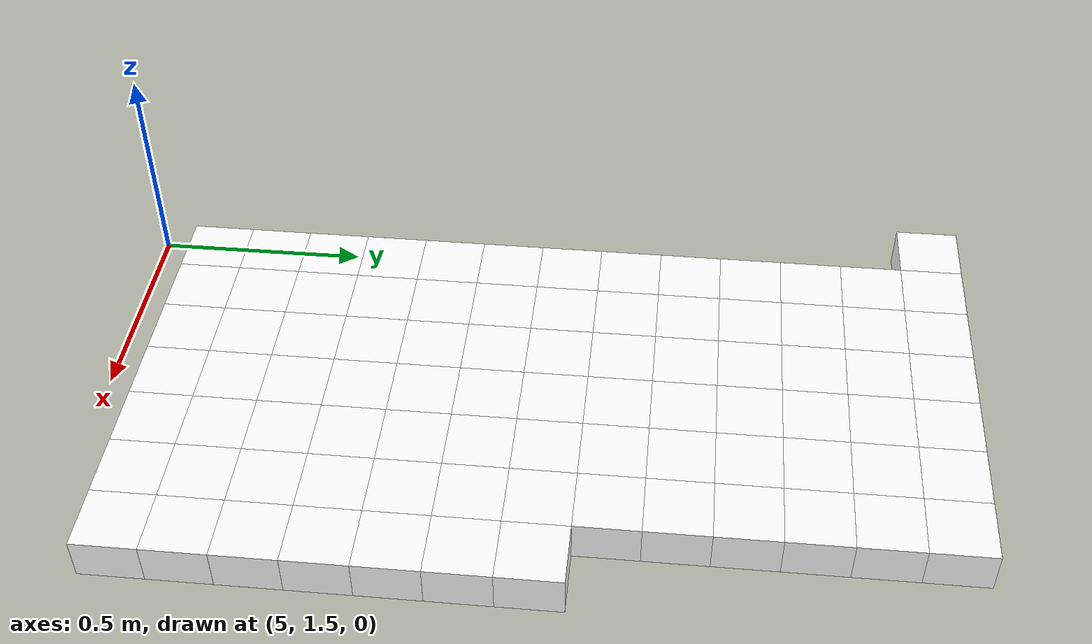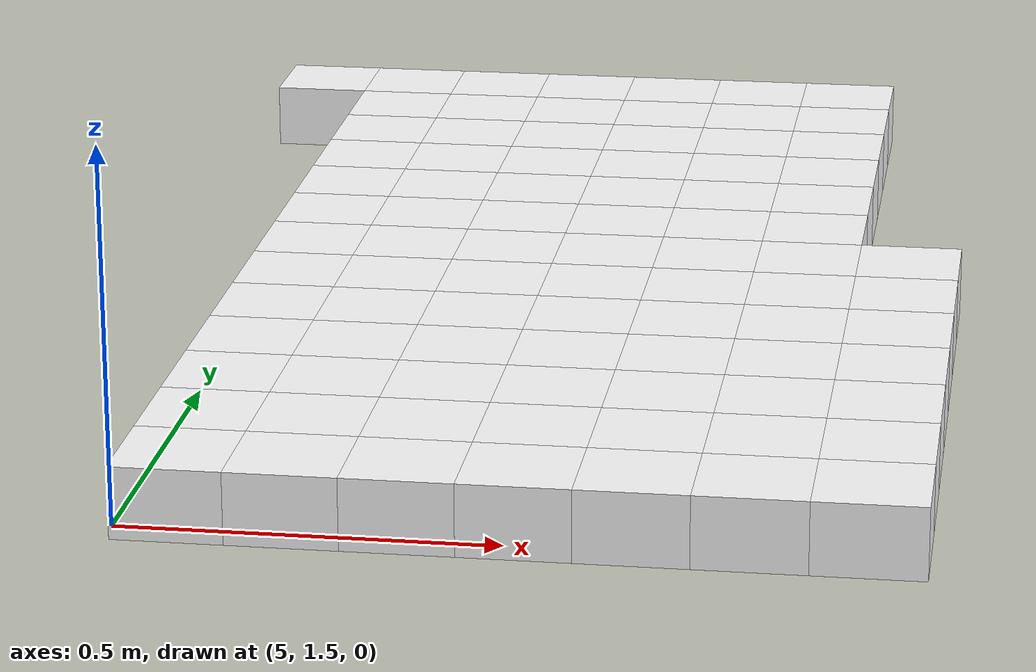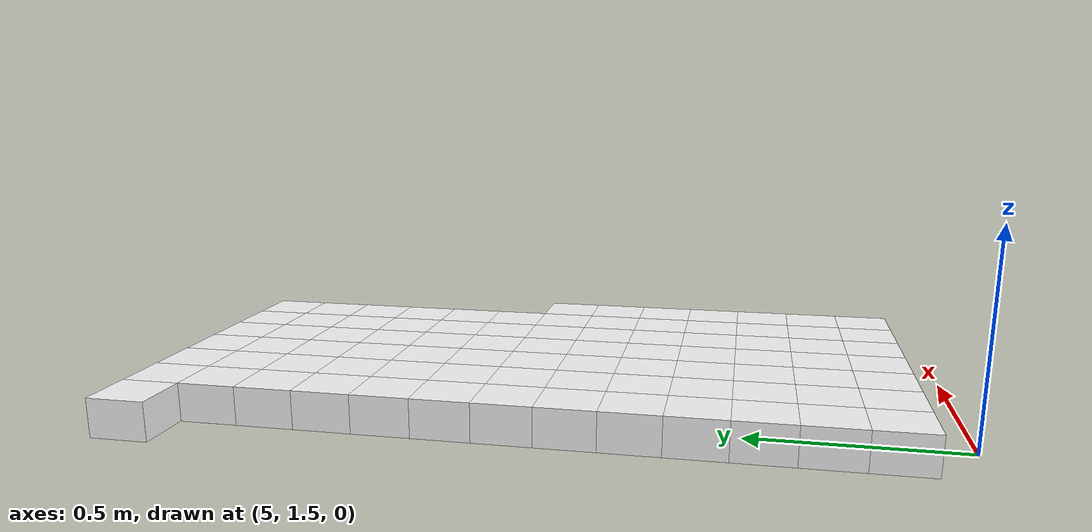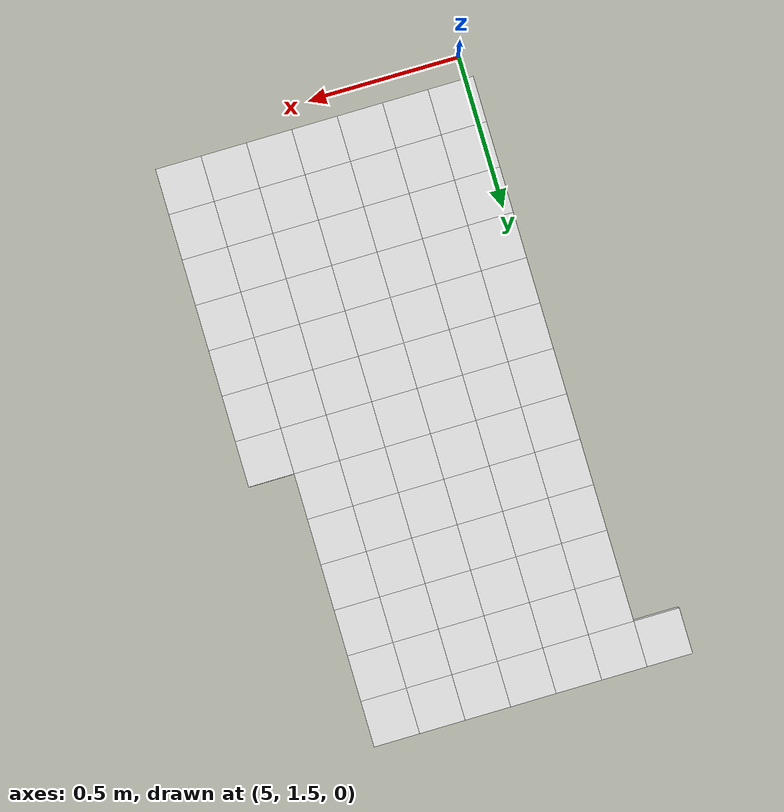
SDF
<sdf version="1.7">
 <world name="default">
  <include><uri>model://sun</uri></include>
  <model name="static_environment">
   <static>true</static>
   <link name="region_711">
    <pose>5.0500000000000025 1.65 0.0 0.0 0.0 0.0</pose>
    <collision name="region_711_collision">
     <geometry><box><size>0.15 0.15 0.1</size></box></geometry>
     <surface><friction><ode><mu>1.0</mu><mu2>1.0</mu2></ode></friction></surface>
    </collision>
    <visual name="region_711_visual">
     <geometry><box><size>0.15 0.15 0.1</size></box></geometry>
     <material><ambient>1.0 1.0 1.0 1.0</ambient><diffuse>1.0 1.0 1.0 1.0</diffuse></material>
    </visual>
   </link>
   <link name="region_712">
    <pose>5.200000000000003 1.65 0.0 0.0 0.0 0.0</pose>
    <collision name="region_712_collision">
     <geometry><box><size>0.15 0.15 0.1</size></box></geometry>
     <surface><friction><ode><mu>1.0</mu><mu2>1.0</mu2></ode></friction></surface>
    </collision>
    <visual name="region_712_visual">
     <geometry><box><size>0.15 0.15 0.1</size></box></geometry>
     <material><ambient>1.0 1.0 1.0 1.0</ambient><diffuse>1.0 1.0 1.0 1.0</diffuse></material>
    </visual>
   </link>
   <link name="region_713">
    <pose>5.350000000000003 1.65 0.0 0.0 0.0 0.0</pose>
    <collision name="region_713_collision">
     <geometry><box><size>0.15 0.15 0.1</size></box></geometry>
     <surface><friction><ode><mu>1.0</mu><mu2>1.0</mu2></ode></friction></surface>
    </collision>
    <visual name="region_713_visual">
     <geometry><box><size>0.15 0.15 0.1</size></box></geometry>
     <material><ambient>1.0 1.0 1.0 1.0</ambient><diffuse>1.0 1.0 1.0 1.0</diffuse></material>
    </visual>
   </link>
   <link name="region_714">
    <pose>5.5000000000000036 1.65 0.0 0.0 0.0 0.0</pose>
    <collision name="region_714_collision">
     <geometry><box><size>0.15 0.15 0.1</size></box></geometry>
     <surface><friction><ode><mu>1.0</mu><mu2>1.0</mu2></ode></friction></surface>
    </collision>
    <visual name="region_714_visual">
     <geometry><box><size>0.15 0.15 0.1</size></box></geometry>
     <material><ambient>1.0 1.0 1.0 1.0</ambient><diffuse>1.0 1.0 1.0 1.0</diffuse></material>
    </visual>
   </link>
   <link name="region_715">
    <pose>5.650000000000004 1.65 0.0 0.0 0.0 0.0</pose>
    <collision name="region_715_collision">
     <geometry><box><size>0.15 0.15 0.1</size></box></geometry>
     <surface><friction><ode><mu>1.0</mu><mu2>1.0</mu2></ode></friction></surface>
    </collision>
    <visual name="region_715_visual">
     <geometry><box><size>0.15 0.15 0.1</size></box></geometry>
     <material><ambient>1.0 1.0 1.0 1.0</ambient><diffuse>1.0 1.0 1.0 1.0</diffuse></material>
    </visual>
   </link>
   <link name="region_716">
    <pose>5.800000000000004 1.65 0.0 0.0 0.0 0.0</pose>
    <collision name="region_716_collision">
     <geometry><box><size>0.15 0.15 0.1</size></box></geometry>
     <surface><friction><ode><mu>1.0</mu><mu2>1.0</mu2></ode></friction></surface>
    </collision>
    <visual name="region_716_visual">
     <geometry><box><size>0.15 0.15 0.1</size></box></geometry>
     <material><ambient>1.0 1.0 1.0 1.0</ambient><diffuse>1.0 1.0 1.0 1.0</diffuse></material>
    </visual>
   </link>
   <link name="region_717">
    <pose>5.950000000000005 1.65 0.0 0.0 0.0 0.0</pose>
    <collision name="region_717_collision">
     <geometry><box><size>0.15 0.15 0.1</size></box></geometry>
     <surface><friction><ode><mu>1.0</mu><mu2>1.0</mu2></ode></friction></surface>
    </collision>
    <visual name="region_717_visual">
     <geometry><box><size>0.15 0.15 0.1</size></box></geometry>
     <material><ambient>1.0 1.0 1.0 1.0</ambient><diffuse>1.0 1.0 1.0 1.0</diffuse></material>
    </visual>
   </link>
   <link name="region_731">
    <pose>5.0500000000000025 1.7999999999999998 0.0 0.0 0.0 0.0</pose>
    <collision name="region_731_collision">
     <geometry><box><size>0.15 0.15 0.1</size></box></geometry>
     <surface><friction><ode><mu>1.0</mu><mu2>1.0</mu2></ode></friction></surface>
    </collision>
    <visual name="region_731_visual">
     <geometry><box><size>0.15 0.15 0.1</size></box></geometry>
     <material><ambient>1.0 1.0 1.0 1.0</ambient><diffuse>1.0 1.0 1.0 1.0</diffuse></material>
    </visual>
   </link>
   <link name="region_732">
    <pose>5.200000000000003 1.7999999999999998 0.0 0.0 0.0 0.0</pose>
    <collision name="region_732_collision">
     <geometry><box><size>0.15 0.15 0.1</size></box></geometry>
     <surface><friction><ode><mu>1.0</mu><mu2>1.0</mu2></ode></friction></surface>
    </collision>
    <visual name="region_732_visual">
     <geometry><box><size>0.15 0.15 0.1</size></box></geometry>
     <material><ambient>1.0 1.0 1.0 1.0</ambient><diffuse>1.0 1.0 1.0 1.0</diffuse></material>
    </visual>
   </link>
   <link name="region_733">
    <pose>5.350000000000003 1.7999999999999998 0.0 0.0 0.0 0.0</pose>
    <collision name="region_733_collision">
     <geometry><box><size>0.15 0.15 0.1</size></box></geometry>
     <surface><friction><ode><mu>1.0</mu><mu2>1.0</mu2></ode></friction></surface>
    </collision>
    <visual name="region_733_visual">
     <geometry><box><size>0.15 0.15 0.1</size></box></geometry>
     <material><ambient>1.0 1.0 1.0 1.0</ambient><diffuse>1.0 1.0 1.0 1.0</diffuse></material>
    </visual>
   </link>
   <link name="region_734">
    <pose>5.5000000000000036 1.7999999999999998 0.0 0.0 0.0 0.0</pose>
    <collision name="region_734_collision">
     <geometry><box><size>0.15 0.15 0.1</size></box></geometry>
     <surface><friction><ode><mu>1.0</mu><mu2>1.0</mu2></ode></friction></surface>
    </collision>
    <visual name="region_734_visual">
     <geometry><box><size>0.15 0.15 0.1</size></box></geometry>
     <material><ambient>1.0 1.0 1.0 1.0</ambient><diffuse>1.0 1.0 1.0 1.0</diffuse></material>
    </visual>
   </link>
   <link name="region_735">
    <pose>5.650000000000004 1.7999999999999998 0.0 0.0 0.0 0.0</pose>
    <collision name="region_735_collision">
     <geometry><box><size>0.15 0.15 0.1</size></box></geometry>
     <surface><friction><ode><mu>1.0</mu><mu2>1.0</mu2></ode></friction></surface>
    </collision>
    <visual name="region_735_visual">
     <geometry><box><size>0.15 0.15 0.1</size></box></geometry>
     <material><ambient>1.0 1.0 1.0 1.0</ambient><diffuse>1.0 1.0 1.0 1.0</diffuse></material>
    </visual>
   </link>
   <link name="region_736">
    <pose>5.800000000000004 1.7999999999999998 0.0 0.0 0.0 0.0</pose>
    <collision name="region_736_collision">
     <geometry><box><size>0.15 0.15 0.1</size></box></geometry>
     <surface><friction><ode><mu>1.0</mu><mu2>1.0</mu2></ode></friction></surface>
    </collision>
    <visual name="region_736_visual">
     <geometry><box><size>0.15 0.15 0.1</size></box></geometry>
     <material><ambient>1.0 1.0 1.0 1.0</ambient><diffuse>1.0 1.0 1.0 1.0</diffuse></material>
    </visual>
   </link>
   <link name="region_737">
    <pose>5.950000000000005 1.7999999999999998 0.0 0.0 0.0 0.0</pose>
    <collision name="region_737_collision">
     <geometry><box><size>0.15 0.15 0.1</size></box></geometry>
     <surface><friction><ode><mu>1.0</mu><mu2>1.0</mu2></ode></friction></surface>
    </collision>
    <visual name="region_737_visual">
     <geometry><box><size>0.15 0.15 0.1</size></box></geometry>
     <material><ambient>1.0 1.0 1.0 1.0</ambient><diffuse>1.0 1.0 1.0 1.0</diffuse></material>
    </visual>
   </link>
   <link name="region_751">
    <pose>5.0500000000000025 1.9499999999999997 0.0 0.0 0.0 0.0</pose>
    <collision name="region_751_collision">
     <geometry><box><size>0.15 0.15 0.1</size></box></geometry>
     <surface><friction><ode><mu>1.0</mu><mu2>1.0</mu2></ode></friction></surface>
    </collision>
    <visual name="region_751_visual">
     <geometry><box><size>0.15 0.15 0.1</size></box></geometry>
     <material><ambient>1.0 1.0 1.0 1.0</ambient><diffuse>1.0 1.0 1.0 1.0</diffuse></material>
    </visual>
   </link>
   <link name="region_752">
    <pose>5.200000000000003 1.9499999999999997 0.0 0.0 0.0 0.0</pose>
    <collision name="region_752_collision">
     <geometry><box><size>0.15 0.15 0.1</size></box></geometry>
     <surface><friction><ode><mu>1.0</mu><mu2>1.0</mu2></ode></friction></surface>
    </collision>
    <visual name="region_752_visual">
     <geometry><box><size>0.15 0.15 0.1</size></box></geometry>
     <material><ambient>1.0 1.0 1.0 1.0</ambient><diffuse>1.0 1.0 1.0 1.0</diffuse></material>
    </visual>
   </link>
   <link name="region_753">
    <pose>5.350000000000003 1.9499999999999997 0.0 0.0 0.0 0.0</pose>
    <collision name="region_753_collision">
     <geometry><box><size>0.15 0.15 0.1</size></box></geometry>
     <surface><friction><ode><mu>1.0</mu><mu2>1.0</mu2></ode></friction></surface>
    </collision>
    <visual name="region_753_visual">
     <geometry><box><size>0.15 0.15 0.1</size></box></geometry>
     <material><ambient>1.0 1.0 1.0 1.0</ambient><diffuse>1.0 1.0 1.0 1.0</diffuse></material>
    </visual>
   </link>
   <link name="region_754">
    <pose>5.5000000000000036 1.9499999999999997 0.0 0.0 0.0 0.0</pose>
    <collision name="region_754_collision">
     <geometry><box><size>0.15 0.15 0.1</size></box></geometry>
     <surface><friction><ode><mu>1.0</mu><mu2>1.0</mu2></ode></friction></surface>
    </collision>
    <visual name="region_754_visual">
     <geometry><box><size>0.15 0.15 0.1</size></box></geometry>
     <material><ambient>1.0 1.0 1.0 1.0</ambient><diffuse>1.0 1.0 1.0 1.0</diffuse></material>
    </visual>
   </link>
   <link name="region_755">
    <pose>5.650000000000004 1.9499999999999997 0.0 0.0 0.0 0.0</pose>
    <collision name="region_755_collision">
     <geometry><box><size>0.15 0.15 0.1</size></box></geometry>
     <surface><friction><ode><mu>1.0</mu><mu2>1.0</mu2></ode></friction></surface>
    </collision>
    <visual name="region_755_visual">
     <geometry><box><size>0.15 0.15 0.1</size></box></geometry>
     <material><ambient>1.0 1.0 1.0 1.0</ambient><diffuse>1.0 1.0 1.0 1.0</diffuse></material>
    </visual>
   </link>
   <link name="region_756">
    <pose>5.800000000000004 1.9499999999999997 0.0 0.0 0.0 0.0</pose>
    <collision name="region_756_collision">
     <geometry><box><size>0.15 0.15 0.1</size></box></geometry>
     <surface><friction><ode><mu>1.0</mu><mu2>1.0</mu2></ode></friction></surface>
    </collision>
    <visual name="region_756_visual">
     <geometry><box><size>0.15 0.15 0.1</size></box></geometry>
     <material><ambient>1.0 1.0 1.0 1.0</ambient><diffuse>1.0 1.0 1.0 1.0</diffuse></material>
    </visual>
   </link>
   <link name="region_757">
    <pose>5.950000000000005 1.9499999999999997 0.0 0.0 0.0 0.0</pose>
    <collision name="region_757_collision">
     <geometry><box><size>0.15 0.15 0.1</size></box></geometry>
     <surface><friction><ode><mu>1.0</mu><mu2>1.0</mu2></ode></friction></surface>
    </collision>
    <visual name="region_757_visual">
     <geometry><box><size>0.15 0.15 0.1</size></box></geometry>
     <material><ambient>1.0 1.0 1.0 1.0</ambient><diffuse>1.0 1.0 1.0 1.0</diffuse></material>
    </visual>
   </link>
   <link name="region_771">
    <pose>5.0500000000000025 2.0999999999999996 0.0 0.0 0.0 0.0</pose>
    <collision name="region_771_collision">
     <geometry><box><size>0.15 0.15 0.1</size></box></geometry>
     <surface><friction><ode><mu>1.0</mu><mu2>1.0</mu2></ode></friction></surface>
    </collision>
    <visual name="region_771_visual">
     <geometry><box><size>0.15 0.15 0.1</size></box></geometry>
     <material><ambient>1.0 1.0 1.0 1.0</ambient><diffuse>1.0 1.0 1.0 1.0</diffuse></material>
    </visual>
   </link>
   <link name="region_772">
    <pose>5.200000000000003 2.0999999999999996 0.0 0.0 0.0 0.0</pose>
    <collision name="region_772_collision">
     <geometry><box><size>0.15 0.15 0.1</size></box></geometry>
     <surface><friction><ode><mu>1.0</mu><mu2>1.0</mu2></ode></friction></surface>
    </collision>
    <visual name="region_772_visual">
     <geometry><box><size>0.15 0.15 0.1</size></box></geometry>
     <material><ambient>1.0 1.0 1.0 1.0</ambient><diffuse>1.0 1.0 1.0 1.0</diffuse></material>
    </visual>
   </link>
   <link name="region_773">
    <pose>5.350000000000003 2.0999999999999996 0.0 0.0 0.0 0.0</pose>
    <collision name="region_773_collision">
     <geometry><box><size>0.15 0.15 0.1</size></box></geometry>
     <surface><friction><ode><mu>1.0</mu><mu2>1.0</mu2></ode></friction></surface>
    </collision>
    <visual name="region_773_visual">
     <geometry><box><size>0.15 0.15 0.1</size></box></geometry>
     <material><ambient>1.0 1.0 1.0 1.0</ambient><diffuse>1.0 1.0 1.0 1.0</diffuse></material>
    </visual>
   </link>
   <link name="region_774">
    <pose>5.5000000000000036 2.0999999999999996 0.0 0.0 0.0 0.0</pose>
    <collision name="region_774_collision">
     <geometry><box><size>0.15 0.15 0.1</size></box></geometry>
     <surface><friction><ode><mu>1.0</mu><mu2>1.0</mu2></ode></friction></surface>
    </collision>
    <visual name="region_774_visual">
     <geometry><box><size>0.15 0.15 0.1</size></box></geometry>
     <material><ambient>1.0 1.0 1.0 1.0</ambient><diffuse>1.0 1.0 1.0 1.0</diffuse></material>
    </visual>
   </link>
   <link name="region_775">
    <pose>5.650000000000004 2.0999999999999996 0.0 0.0 0.0 0.0</pose>
    <collision name="region_775_collision">
     <geometry><box><size>0.15 0.15 0.1</size></box></geometry>
     <surface><friction><ode><mu>1.0</mu><mu2>1.0</mu2></ode></friction></surface>
    </collision>
    <visual name="region_775_visual">
     <geometry><box><size>0.15 0.15 0.1</size></box></geometry>
     <material><ambient>1.0 1.0 1.0 1.0</ambient><diffuse>1.0 1.0 1.0 1.0</diffuse></material>
    </visual>
   </link>
   <link name="region_776">
    <pose>5.800000000000004 2.0999999999999996 0.0 0.0 0.0 0.0</pose>
    <collision name="region_776_collision">
     <geometry><box><size>0.15 0.15 0.1</size></box></geometry>
     <surface><friction><ode><mu>1.0</mu><mu2>1.0</mu2></ode></friction></surface>
    </collision>
    <visual name="region_776_visual">
     <geometry><box><size>0.15 0.15 0.1</size></box></geometry>
     <material><ambient>1.0 1.0 1.0 1.0</ambient><diffuse>1.0 1.0 1.0 1.0</diffuse></material>
    </visual>
   </link>
   <link name="region_777">
    <pose>5.950000000000005 2.0999999999999996 0.0 0.0 0.0 0.0</pose>
    <collision name="region_777_collision">
     <geometry><box><size>0.15 0.15 0.1</size></box></geometry>
     <surface><friction><ode><mu>1.0</mu><mu2>1.0</mu2></ode></friction></surface>
    </collision>
    <visual name="region_777_visual">
     <geometry><box><size>0.15 0.15 0.1</size></box></geometry>
     <material><ambient>1.0 1.0 1.0 1.0</ambient><diffuse>1.0 1.0 1.0 1.0</diffuse></material>
    </visual>
   </link>
   <link name="region_791">
    <pose>5.0500000000000025 2.2499999999999996 0.0 0.0 0.0 0.0</pose>
    <collision name="region_791_collision">
     <geometry><box><size>0.15 0.15 0.1</size></box></geometry>
     <surface><friction><ode><mu>1.0</mu><mu2>1.0</mu2></ode></friction></surface>
    </collision>
    <visual name="region_791_visual">
     <geometry><box><size>0.15 0.15 0.1</size></box></geometry>
     <material><ambient>1.0 1.0 1.0 1.0</ambient><diffuse>1.0 1.0 1.0 1.0</diffuse></material>
    </visual>
   </link>
   <link name="region_792">
    <pose>5.200000000000003 2.2499999999999996 0.0 0.0 0.0 0.0</pose>
    <collision name="region_792_collision">
     <geometry><box><size>0.15 0.15 0.1</size></box></geometry>
     <surface><friction><ode><mu>1.0</mu><mu2>1.0</mu2></ode></friction></surface>
    </collision>
    <visual name="region_792_visual">
     <geometry><box><size>0.15 0.15 0.1</size></box></geometry>
     <material><ambient>1.0 1.0 1.0 1.0</ambient><diffuse>1.0 1.0 1.0 1.0</diffuse></material>
    </visual>
   </link>
   <link name="region_793">
    <pose>5.350000000000003 2.2499999999999996 0.0 0.0 0.0 0.0</pose>
    <collision name="region_793_collision">
     <geometry><box><size>0.15 0.15 0.1</size></box></geometry>
     <surface><friction><ode><mu>1.0</mu><mu2>1.0</mu2></ode></friction></surface>
    </collision>
    <visual name="region_793_visual">
     <geometry><box><size>0.15 0.15 0.1</size></box></geometry>
     <material><ambient>1.0 1.0 1.0 1.0</ambient><diffuse>1.0 1.0 1.0 1.0</diffuse></material>
    </visual>
   </link>
   <link name="region_794">
    <pose>5.5000000000000036 2.2499999999999996 0.0 0.0 0.0 0.0</pose>
    <collision name="region_794_collision">
     <geometry><box><size>0.15 0.15 0.1</size></box></geometry>
     <surface><friction><ode><mu>1.0</mu><mu2>1.0</mu2></ode></friction></surface>
    </collision>
    <visual name="region_794_visual">
     <geometry><box><size>0.15 0.15 0.1</size></box></geometry>
     <material><ambient>1.0 1.0 1.0 1.0</ambient><diffuse>1.0 1.0 1.0 1.0</diffuse></material>
    </visual>
   </link>
   <link name="region_795">
    <pose>5.650000000000004 2.2499999999999996 0.0 0.0 0.0 0.0</pose>
    <collision name="region_795_collision">
     <geometry><box><size>0.15 0.15 0.1</size></box></geometry>
     <surface><friction><ode><mu>1.0</mu><mu2>1.0</mu2></ode></friction></surface>
    </collision>
    <visual name="region_795_visual">
     <geometry><box><size>0.15 0.15 0.1</size></box></geometry>
     <material><ambient>1.0 1.0 1.0 1.0</ambient><diffuse>1.0 1.0 1.0 1.0</diffuse></material>
    </visual>
   </link>
   <link name="region_796">
    <pose>5.800000000000004 2.2499999999999996 0.0 0.0 0.0 0.0</pose>
    <collision name="region_796_collision">
     <geometry><box><size>0.15 0.15 0.1</size></box></geometry>
     <surface><friction><ode><mu>1.0</mu><mu2>1.0</mu2></ode></friction></surface>
    </collision>
    <visual name="region_796_visual">
     <geometry><box><size>0.15 0.15 0.1</size></box></geometry>
     <material><ambient>1.0 1.0 1.0 1.0</ambient><diffuse>1.0 1.0 1.0 1.0</diffuse></material>
    </visual>
   </link>
   <link name="region_797">
    <pose>5.950000000000005 2.2499999999999996 0.0 0.0 0.0 0.0</pose>
    <collision name="region_797_collision">
     <geometry><box><size>0.15 0.15 0.1</size></box></geometry>
     <surface><friction><ode><mu>1.0</mu><mu2>1.0</mu2></ode></friction></surface>
    </collision>
    <visual name="region_797_visual">
     <geometry><box><size>0.15 0.15 0.1</size></box></geometry>
     <material><ambient>1.0 1.0 1.0 1.0</ambient><diffuse>1.0 1.0 1.0 1.0</diffuse></material>
    </visual>
   </link>
   <link name="region_811">
    <pose>5.0500000000000025 2.3999999999999995 0.0 0.0 0.0 0.0</pose>
    <collision name="region_811_collision">
     <geometry><box><size>0.15 0.15 0.1</size></box></geometry>
     <surface><friction><ode><mu>1.0</mu><mu2>1.0</mu2></ode></friction></surface>
    </collision>
    <visual name="region_811_visual">
     <geometry><box><size>0.15 0.15 0.1</size></box></geometry>
     <material><ambient>1.0 1.0 1.0 1.0</ambient><diffuse>1.0 1.0 1.0 1.0</diffuse></material>
    </visual>
   </link>
   <link name="region_812">
    <pose>5.200000000000003 2.3999999999999995 0.0 0.0 0.0 0.0</pose>
    <collision name="region_812_collision">
     <geometry><box><size>0.15 0.15 0.1</size></box></geometry>
     <surface><friction><ode><mu>1.0</mu><mu2>1.0</mu2></ode></friction></surface>
    </collision>
    <visual name="region_812_visual">
     <geometry><box><size>0.15 0.15 0.1</size></box></geometry>
     <material><ambient>1.0 1.0 1.0 1.0</ambient><diffuse>1.0 1.0 1.0 1.0</diffuse></material>
    </visual>
   </link>
   <link name="region_813">
    <pose>5.350000000000003 2.3999999999999995 0.0 0.0 0.0 0.0</pose>
    <collision name="region_813_collision">
     <geometry><box><size>0.15 0.15 0.1</size></box></geometry>
     <surface><friction><ode><mu>1.0</mu><mu2>1.0</mu2></ode></friction></surface>
    </collision>
    <visual name="region_813_visual">
     <geometry><box><size>0.15 0.15 0.1</size></box></geometry>
     <material><ambient>1.0 1.0 1.0 1.0</ambient><diffuse>1.0 1.0 1.0 1.0</diffuse></material>
    </visual>
   </link>
   <link name="region_814">
    <pose>5.5000000000000036 2.3999999999999995 0.0 0.0 0.0 0.0</pose>
    <collision name="region_814_collision">
     <geometry><box><size>0.15 0.15 0.1</size></box></geometry>
     <surface><friction><ode><mu>1.0</mu><mu2>1.0</mu2></ode></friction></surface>
    </collision>
    <visual name="region_814_visual">
     <geometry><box><size>0.15 0.15 0.1</size></box></geometry>
     <material><ambient>1.0 1.0 1.0 1.0</ambient><diffuse>1.0 1.0 1.0 1.0</diffuse></material>
    </visual>
   </link>
   <link name="region_815">
    <pose>5.650000000000004 2.3999999999999995 0.0 0.0 0.0 0.0</pose>
    <collision name="region_815_collision">
     <geometry><box><size>0.15 0.15 0.1</size></box></geometry>
     <surface><friction><ode><mu>1.0</mu><mu2>1.0</mu2></ode></friction></surface>
    </collision>
    <visual name="region_815_visual">
     <geometry><box><size>0.15 0.15 0.1</size></box></geometry>
     <material><ambient>1.0 1.0 1.0 1.0</ambient><diffuse>1.0 1.0 1.0 1.0</diffuse></material>
    </visual>
   </link>
   <link name="region_816">
    <pose>5.800000000000004 2.3999999999999995 0.0 0.0 0.0 0.0</pose>
    <collision name="region_816_collision">
     <geometry><box><size>0.15 0.15 0.1</size></box></geometry>
     <surface><friction><ode><mu>1.0</mu><mu2>1.0</mu2></ode></friction></surface>
    </collision>
    <visual name="region_816_visual">
     <geometry><box><size>0.15 0.15 0.1</size></box></geometry>
     <material><ambient>1.0 1.0 1.0 1.0</ambient><diffuse>1.0 1.0 1.0 1.0</diffuse></material>
    </visual>
   </link>
   <link name="region_817">
    <pose>5.950000000000005 2.3999999999999995 0.0 0.0 0.0 0.0</pose>
    <collision name="region_817_collision">
     <geometry><box><size>0.15 0.15 0.1</size></box></geometry>
     <surface><friction><ode><mu>1.0</mu><mu2>1.0</mu2></ode></friction></surface>
    </collision>
    <visual name="region_817_visual">
     <geometry><box><size>0.15 0.15 0.1</size></box></geometry>
     <material><ambient>1.0 1.0 1.0 1.0</ambient><diffuse>1.0 1.0 1.0 1.0</diffuse></material>
    </visual>
   </link>
   <link name="region_831">
    <pose>5.0500000000000025 2.5499999999999994 0.0 0.0 0.0 0.0</pose>
    <collision name="region_831_collision">
     <geometry><box><size>0.15 0.15 0.1</size></box></geometry>
     <surface><friction><ode><mu>1.0</mu><mu2>1.0</mu2></ode></friction></surface>
    </collision>
    <visual name="region_831_visual">
     <geometry><box><size>0.15 0.15 0.1</size></box></geometry>
     <material><ambient>1.0 1.0 1.0 1.0</ambient><diffuse>1.0 1.0 1.0 1.0</diffuse></material>
    </visual>
   </link>
   <link name="region_832">
    <pose>5.200000000000003 2.5499999999999994 0.0 0.0 0.0 0.0</pose>
    <collision name="region_832_collision">
     <geometry><box><size>0.15 0.15 0.1</size></box></geometry>
     <surface><friction><ode><mu>1.0</mu><mu2>1.0</mu2></ode></friction></surface>
    </collision>
    <visual name="region_832_visual">
     <geometry><box><size>0.15 0.15 0.1</size></box></geometry>
     <material><ambient>1.0 1.0 1.0 1.0</ambient><diffuse>1.0 1.0 1.0 1.0</diffuse></material>
    </visual>
   </link>
   <link name="region_833">
    <pose>5.350000000000003 2.5499999999999994 0.0 0.0 0.0 0.0</pose>
    <collision name="region_833_collision">
     <geometry><box><size>0.15 0.15 0.1</size></box></geometry>
     <surface><friction><ode><mu>1.0</mu><mu2>1.0</mu2></ode></friction></surface>
    </collision>
    <visual name="region_833_visual">
     <geometry><box><size>0.15 0.15 0.1</size></box></geometry>
     <material><ambient>1.0 1.0 1.0 1.0</ambient><diffuse>1.0 1.0 1.0 1.0</diffuse></material>
    </visual>
   </link>
   <link name="region_834">
    <pose>5.5000000000000036 2.5499999999999994 0.0 0.0 0.0 0.0</pose>
    <collision name="region_834_collision">
     <geometry><box><size>0.15 0.15 0.1</size></box></geometry>
     <surface><friction><ode><mu>1.0</mu><mu2>1.0</mu2></ode></friction></surface>
    </collision>
    <visual name="region_834_visual">
     <geometry><box><size>0.15 0.15 0.1</size></box></geometry>
     <material><ambient>1.0 1.0 1.0 1.0</ambient><diffuse>1.0 1.0 1.0 1.0</diffuse></material>
    </visual>
   </link>
   <link name="region_835">
    <pose>5.650000000000004 2.5499999999999994 0.0 0.0 0.0 0.0</pose>
    <collision name="region_835_collision">
     <geometry><box><size>0.15 0.15 0.1</size></box></geometry>
     <surface><friction><ode><mu>1.0</mu><mu2>1.0</mu2></ode></friction></surface>
    </collision>
    <visual name="region_835_visual">
     <geometry><box><size>0.15 0.15 0.1</size></box></geometry>
     <material><ambient>1.0 1.0 1.0 1.0</ambient><diffuse>1.0 1.0 1.0 1.0</diffuse></material>
    </visual>
   </link>
   <link name="region_836">
    <pose>5.800000000000004 2.5499999999999994 0.0 0.0 0.0 0.0</pose>
    <collision name="region_836_collision">
     <geometry><box><size>0.15 0.15 0.1</size></box></geometry>
     <surface><friction><ode><mu>1.0</mu><mu2>1.0</mu2></ode></friction></surface>
    </collision>
    <visual name="region_836_visual">
     <geometry><box><size>0.15 0.15 0.1</size></box></geometry>
     <material><ambient>1.0 1.0 1.0 1.0</ambient><diffuse>1.0 1.0 1.0 1.0</diffuse></material>
    </visual>
   </link>
   <link name="region_837">
    <pose>5.950000000000005 2.5499999999999994 0.0 0.0 0.0 0.0</pose>
    <collision name="region_837_collision">
     <geometry><box><size>0.15 0.15 0.1</size></box></geometry>
     <surface><friction><ode><mu>1.0</mu><mu2>1.0</mu2></ode></friction></surface>
    </collision>
    <visual name="region_837_visual">
     <geometry><box><size>0.15 0.15 0.1</size></box></geometry>
     <material><ambient>1.0 1.0 1.0 1.0</ambient><diffuse>1.0 1.0 1.0 1.0</diffuse></material>
    </visual>
   </link>
   <link name="region_851">
    <pose>5.0500000000000025 2.6999999999999997 0.0 0.0 0.0 0.0</pose>
    <collision name="region_851_collision">
     <geometry><box><size>0.15 0.15 0.1</size></box></geometry>
     <surface><friction><ode><mu>1.0</mu><mu2>1.0</mu2></ode></friction></surface>
    </collision>
    <visual name="region_851_visual">
     <geometry><box><size>0.15 0.15 0.1</size></box></geometry>
     <material><ambient>1.0 1.0 1.0 1.0</ambient><diffuse>1.0 1.0 1.0 1.0</diffuse></material>
    </visual>
   </link>
   <link name="region_852">
    <pose>5.200000000000003 2.6999999999999997 0.0 0.0 0.0 0.0</pose>
    <collision name="region_852_collision">
     <geometry><box><size>0.15 0.15 0.1</size></box></geometry>
     <surface><friction><ode><mu>1.0</mu><mu2>1.0</mu2></ode></friction></surface>
    </collision>
    <visual name="region_852_visual">
     <geometry><box><size>0.15 0.15 0.1</size></box></geometry>
     <material><ambient>1.0 1.0 1.0 1.0</ambient><diffuse>1.0 1.0 1.0 1.0</diffuse></material>
    </visual>
   </link>
   <link name="region_853">
    <pose>5.350000000000003 2.6999999999999997 0.0 0.0 0.0 0.0</pose>
    <collision name="region_853_collision">
     <geometry><box><size>0.15 0.15 0.1</size></box></geometry>
     <surface><friction><ode><mu>1.0</mu><mu2>1.0</mu2></ode></friction></surface>
    </collision>
    <visual name="region_853_visual">
     <geometry><box><size>0.15 0.15 0.1</size></box></geometry>
     <material><ambient>1.0 1.0 1.0 1.0</ambient><diffuse>1.0 1.0 1.0 1.0</diffuse></material>
    </visual>
   </link>
   <link name="region_854">
    <pose>5.5000000000000036 2.6999999999999997 0.0 0.0 0.0 0.0</pose>
    <collision name="region_854_collision">
     <geometry><box><size>0.15 0.15 0.1</size></box></geometry>
     <surface><friction><ode><mu>1.0</mu><mu2>1.0</mu2></ode></friction></surface>
    </collision>
    <visual name="region_854_visual">
     <geometry><box><size>0.15 0.15 0.1</size></box></geometry>
     <material><ambient>1.0 1.0 1.0 1.0</ambient><diffuse>1.0 1.0 1.0 1.0</diffuse></material>
    </visual>
   </link>
   <link name="region_855">
    <pose>5.650000000000004 2.6999999999999997 0.0 0.0 0.0 0.0</pose>
    <collision name="region_855_collision">
     <geometry><box><size>0.15 0.15 0.1</size></box></geometry>
     <surface><friction><ode><mu>1.0</mu><mu2>1.0</mu2></ode></friction></surface>
    </collision>
    <visual name="region_855_visual">
     <geometry><box><size>0.15 0.15 0.1</size></box></geometry>
     <material><ambient>1.0 1.0 1.0 1.0</ambient><diffuse>1.0 1.0 1.0 1.0</diffuse></material>
    </visual>
   </link>
   <link name="region_856">
    <pose>5.800000000000004 2.6999999999999997 0.0 0.0 0.0 0.0</pose>
    <collision name="region_856_collision">
     <geometry><box><size>0.15 0.15 0.1</size></box></geometry>
     <surface><friction><ode><mu>1.0</mu><mu2>1.0</mu2></ode></friction></surface>
    </collision>
    <visual name="region_856_visual">
     <geometry><box><size>0.15 0.15 0.1</size></box></geometry>
     <material><ambient>1.0 1.0 1.0 1.0</ambient><diffuse>1.0 1.0 1.0 1.0</diffuse></material>
    </visual>
   </link>
   <link name="region_871">
    <pose>5.0500000000000025 2.8499999999999996 0.0 0.0 0.0 0.0</pose>
    <collision name="region_871_collision">
     <geometry><box><size>0.15 0.15 0.1</size></box></geometry>
     <surface><friction><ode><mu>1.0</mu><mu2>1.0</mu2></ode></friction></surface>
    </collision>
    <visual name="region_871_visual">
     <geometry><box><size>0.15 0.15 0.1</size></box></geometry>
     <material><ambient>1.0 1.0 1.0 1.0</ambient><diffuse>1.0 1.0 1.0 1.0</diffuse></material>
    </visual>
   </link>
   <link name="region_872">
    <pose>5.200000000000003 2.8499999999999996 0.0 0.0 0.0 0.0</pose>
    <collision name="region_872_collision">
     <geometry><box><size>0.15 0.15 0.1</size></box></geometry>
     <surface><friction><ode><mu>1.0</mu><mu2>1.0</mu2></ode></friction></surface>
    </collision>
    <visual name="region_872_visual">
     <geometry><box><size>0.15 0.15 0.1</size></box></geometry>
     <material><ambient>1.0 1.0 1.0 1.0</ambient><diffuse>1.0 1.0 1.0 1.0</diffuse></material>
    </visual>
   </link>
   <link name="region_873">
    <pose>5.350000000000003 2.8499999999999996 0.0 0.0 0.0 0.0</pose>
    <collision name="region_873_collision">
     <geometry><box><size>0.15 0.15 0.1</size></box></geometry>
     <surface><friction><ode><mu>1.0</mu><mu2>1.0</mu2></ode></friction></surface>
    </collision>
    <visual name="region_873_visual">
     <geometry><box><size>0.15 0.15 0.1</size></box></geometry>
     <material><ambient>1.0 1.0 1.0 1.0</ambient><diffuse>1.0 1.0 1.0 1.0</diffuse></material>
    </visual>
   </link>
   <link name="region_874">
    <pose>5.5000000000000036 2.8499999999999996 0.0 0.0 0.0 0.0</pose>
    <collision name="region_874_collision">
     <geometry><box><size>0.15 0.15 0.1</size></box></geometry>
     <surface><friction><ode><mu>1.0</mu><mu2>1.0</mu2></ode></friction></surface>
    </collision>
    <visual name="region_874_visual">
     <geometry><box><size>0.15 0.15 0.1</size></box></geometry>
     <material><ambient>1.0 1.0 1.0 1.0</ambient><diffuse>1.0 1.0 1.0 1.0</diffuse></material>
    </visual>
   </link>
   <link name="region_875">
    <pose>5.650000000000004 2.8499999999999996 0.0 0.0 0.0 0.0</pose>
    <collision name="region_875_collision">
     <geometry><box><size>0.15 0.15 0.1</size></box></geometry>
     <surface><friction><ode><mu>1.0</mu><mu2>1.0</mu2></ode></friction></surface>
    </collision>
    <visual name="region_875_visual">
     <geometry><box><size>0.15 0.15 0.1</size></box></geometry>
     <material><ambient>1.0 1.0 1.0 1.0</ambient><diffuse>1.0 1.0 1.0 1.0</diffuse></material>
    </visual>
   </link>
   <link name="region_876">
    <pose>5.800000000000004 2.8499999999999996 0.0 0.0 0.0 0.0</pose>
    <collision name="region_876_collision">
     <geometry><box><size>0.15 0.15 0.1</size></box></geometry>
     <surface><friction><ode><mu>1.0</mu><mu2>1.0</mu2></ode></friction></surface>
    </collision>
    <visual name="region_876_visual">
     <geometry><box><size>0.15 0.15 0.1</size></box></geometry>
     <material><ambient>1.0 1.0 1.0 1.0</ambient><diffuse>1.0 1.0 1.0 1.0</diffuse></material>
    </visual>
   </link>
   <link name="region_891">
    <pose>5.0500000000000025 2.9999999999999996 0.0 0.0 0.0 0.0</pose>
    <collision name="region_891_collision">
     <geometry><box><size>0.15 0.15 0.1</size></box></geometry>
     <surface><friction><ode><mu>1.0</mu><mu2>1.0</mu2></ode></friction></surface>
    </collision>
    <visual name="region_891_visual">
     <geometry><box><size>0.15 0.15 0.1</size></box></geometry>
     <material><ambient>1.0 1.0 1.0 1.0</ambient><diffuse>1.0 1.0 1.0 1.0</diffuse></material>
    </visual>
   </link>
   <link name="region_892">
    <pose>5.200000000000003 2.9999999999999996 0.0 0.0 0.0 0.0</pose>
    <collision name="region_892_collision">
     <geometry><box><size>0.15 0.15 0.1</size></box></geometry>
     <surface><friction><ode><mu>1.0</mu><mu2>1.0</mu2></ode></friction></surface>
    </collision>
    <visual name="region_892_visual">
     <geometry><box><size>0.15 0.15 0.1</size></box></geometry>
     <material><ambient>1.0 1.0 1.0 1.0</ambient><diffuse>1.0 1.0 1.0 1.0</diffuse></material>
    </visual>
   </link>
   <link name="region_893">
    <pose>5.350000000000003 2.9999999999999996 0.0 0.0 0.0 0.0</pose>
    <collision name="region_893_collision">
     <geometry><box><size>0.15 0.15 0.1</size></box></geometry>
     <surface><friction><ode><mu>1.0</mu><mu2>1.0</mu2></ode></friction></surface>
    </collision>
    <visual name="region_893_visual">
     <geometry><box><size>0.15 0.15 0.1</size></box></geometry>
     <material><ambient>1.0 1.0 1.0 1.0</ambient><diffuse>1.0 1.0 1.0 1.0</diffuse></material>
    </visual>
   </link>
   <link name="region_894">
    <pose>5.5000000000000036 2.9999999999999996 0.0 0.0 0.0 0.0</pose>
    <collision name="region_894_collision">
     <geometry><box><size>0.15 0.15 0.1</size></box></geometry>
     <surface><friction><ode><mu>1.0</mu><mu2>1.0</mu2></ode></friction></surface>
    </collision>
    <visual name="region_894_visual">
     <geometry><box><size>0.15 0.15 0.1</size></box></geometry>
     <material><ambient>1.0 1.0 1.0 1.0</ambient><diffuse>1.0 1.0 1.0 1.0</diffuse></material>
    </visual>
   </link>
   <link name="region_895">
    <pose>5.650000000000004 2.9999999999999996 0.0 0.0 0.0 0.0</pose>
    <collision name="region_895_collision">
     <geometry><box><size>0.15 0.15 0.1</size></box></geometry>
     <surface><friction><ode><mu>1.0</mu><mu2>1.0</mu2></ode></friction></surface>
    </collision>
    <visual name="region_895_visual">
     <geometry><box><size>0.15 0.15 0.1</size></box></geometry>
     <material><ambient>1.0 1.0 1.0 1.0</ambient><diffuse>1.0 1.0 1.0 1.0</diffuse></material>
    </visual>
   </link>
   <link name="region_896">
    <pose>5.800000000000004 2.9999999999999996 0.0 0.0 0.0 0.0</pose>
    <collision name="region_896_collision">
     <geometry><box><size>0.15 0.15 0.1</size></box></geometry>
     <surface><friction><ode><mu>1.0</mu><mu2>1.0</mu2></ode></friction></surface>
    </collision>
    <visual name="region_896_visual">
     <geometry><box><size>0.15 0.15 0.1</size></box></geometry>
     <material><ambient>1.0 1.0 1.0 1.0</ambient><diffuse>1.0 1.0 1.0 1.0</diffuse></material>
    </visual>
   </link>
   <link name="region_911">
    <pose>5.0500000000000025 3.1499999999999995 0.0 0.0 0.0 0.0</pose>
    <collision name="region_911_collision">
     <geometry><box><size>0.15 0.15 0.1</size></box></geometry>
     <surface><friction><ode><mu>1.0</mu><mu2>1.0</mu2></ode></friction></surface>
    </collision>
    <visual name="region_911_visual">
     <geometry><box><size>0.15 0.15 0.1</size></box></geometry>
     <material><ambient>1.0 1.0 1.0 1.0</ambient><diffuse>1.0 1.0 1.0 1.0</diffuse></material>
    </visual>
   </link>
   <link name="region_912">
    <pose>5.200000000000003 3.1499999999999995 0.0 0.0 0.0 0.0</pose>
    <collision name="region_912_collision">
     <geometry><box><size>0.15 0.15 0.1</size></box></geometry>
     <surface><friction><ode><mu>1.0</mu><mu2>1.0</mu2></ode></friction></surface>
    </collision>
    <visual name="region_912_visual">
     <geometry><box><size>0.15 0.15 0.1</size></box></geometry>
     <material><ambient>1.0 1.0 1.0 1.0</ambient><diffuse>1.0 1.0 1.0 1.0</diffuse></material>
    </visual>
   </link>
   <link name="region_913">
    <pose>5.350000000000003 3.1499999999999995 0.0 0.0 0.0 0.0</pose>
    <collision name="region_913_collision">
     <geometry><box><size>0.15 0.15 0.1</size></box></geometry>
     <surface><friction><ode><mu>1.0</mu><mu2>1.0</mu2></ode></friction></surface>
    </collision>
    <visual name="region_913_visual">
     <geometry><box><size>0.15 0.15 0.1</size></box></geometry>
     <material><ambient>1.0 1.0 1.0 1.0</ambient><diffuse>1.0 1.0 1.0 1.0</diffuse></material>
    </visual>
   </link>
   <link name="region_914">
    <pose>5.5000000000000036 3.1499999999999995 0.0 0.0 0.0 0.0</pose>
    <collision name="region_914_collision">
     <geometry><box><size>0.15 0.15 0.1</size></box></geometry>
     <surface><friction><ode><mu>1.0</mu><mu2>1.0</mu2></ode></friction></surface>
    </collision>
    <visual name="region_914_visual">
     <geometry><box><size>0.15 0.15 0.1</size></box></geometry>
     <material><ambient>1.0 1.0 1.0 1.0</ambient><diffuse>1.0 1.0 1.0 1.0</diffuse></material>
    </visual>
   </link>
   <link name="region_915">
    <pose>5.650000000000004 3.1499999999999995 0.0 0.0 0.0 0.0</pose>
    <collision name="region_915_collision">
     <geometry><box><size>0.15 0.15 0.1</size></box></geometry>
     <surface><friction><ode><mu>1.0</mu><mu2>1.0</mu2></ode></friction></surface>
    </collision>
    <visual name="region_915_visual">
     <geometry><box><size>0.15 0.15 0.1</size></box></geometry>
     <material><ambient>1.0 1.0 1.0 1.0</ambient><diffuse>1.0 1.0 1.0 1.0</diffuse></material>
    </visual>
   </link>
   <link name="region_916">
    <pose>5.800000000000004 3.1499999999999995 0.0 0.0 0.0 0.0</pose>
    <collision name="region_916_collision">
     <geometry><box><size>0.15 0.15 0.1</size></box></geometry>
     <surface><friction><ode><mu>1.0</mu><mu2>1.0</mu2></ode></friction></surface>
    </collision>
    <visual name="region_916_visual">
     <geometry><box><size>0.15 0.15 0.1</size></box></geometry>
     <material><ambient>1.0 1.0 1.0 1.0</ambient><diffuse>1.0 1.0 1.0 1.0</diffuse></material>
    </visual>
   </link>
   <link name="region_931">
    <pose>5.0500000000000025 3.2999999999999994 0.0 0.0 0.0 0.0</pose>
    <collision name="region_931_collision">
     <geometry><box><size>0.15 0.15 0.1</size></box></geometry>
     <surface><friction><ode><mu>1.0</mu><mu2>1.0</mu2></ode></friction></surface>
    </collision>
    <visual name="region_931_visual">
     <geometry><box><size>0.15 0.15 0.1</size></box></geometry>
     <material><ambient>1.0 1.0 1.0 1.0</ambient><diffuse>1.0 1.0 1.0 1.0</diffuse></material>
    </visual>
   </link>
   <link name="region_932">
    <pose>5.200000000000003 3.2999999999999994 0.0 0.0 0.0 0.0</pose>
    <collision name="region_932_collision">
     <geometry><box><size>0.15 0.15 0.1</size></box></geometry>
     <surface><friction><ode><mu>1.0</mu><mu2>1.0</mu2></ode></friction></surface>
    </collision>
    <visual name="region_932_visual">
     <geometry><box><size>0.15 0.15 0.1</size></box></geometry>
     <material><ambient>1.0 1.0 1.0 1.0</ambient><diffuse>1.0 1.0 1.0 1.0</diffuse></material>
    </visual>
   </link>
   <link name="region_933">
    <pose>5.350000000000003 3.2999999999999994 0.0 0.0 0.0 0.0</pose>
    <collision name="region_933_collision">
     <geometry><box><size>0.15 0.15 0.1</size></box></geometry>
     <surface><friction><ode><mu>1.0</mu><mu2>1.0</mu2></ode></friction></surface>
    </collision>
    <visual name="region_933_visual">
     <geometry><box><size>0.15 0.15 0.1</size></box></geometry>
     <material><ambient>1.0 1.0 1.0 1.0</ambient><diffuse>1.0 1.0 1.0 1.0</diffuse></material>
    </visual>
   </link>
   <link name="region_934">
    <pose>5.5000000000000036 3.2999999999999994 0.0 0.0 0.0 0.0</pose>
    <collision name="region_934_collision">
     <geometry><box><size>0.15 0.15 0.1</size></box></geometry>
     <surface><friction><ode><mu>1.0</mu><mu2>1.0</mu2></ode></friction></surface>
    </collision>
    <visual name="region_934_visual">
     <geometry><box><size>0.15 0.15 0.1</size></box></geometry>
     <material><ambient>1.0 1.0 1.0 1.0</ambient><diffuse>1.0 1.0 1.0 1.0</diffuse></material>
    </visual>
   </link>
   <link name="region_935">
    <pose>5.650000000000004 3.2999999999999994 0.0 0.0 0.0 0.0</pose>
    <collision name="region_935_collision">
     <geometry><box><size>0.15 0.15 0.1</size></box></geometry>
     <surface><friction><ode><mu>1.0</mu><mu2>1.0</mu2></ode></friction></surface>
    </collision>
    <visual name="region_935_visual">
     <geometry><box><size>0.15 0.15 0.1</size></box></geometry>
     <material><ambient>1.0 1.0 1.0 1.0</ambient><diffuse>1.0 1.0 1.0 1.0</diffuse></material>
    </visual>
   </link>
   <link name="region_936">
    <pose>5.800000000000004 3.2999999999999994 0.0 0.0 0.0 0.0</pose>
    <collision name="region_936_collision">
     <geometry><box><size>0.15 0.15 0.1</size></box></geometry>
     <surface><friction><ode><mu>1.0</mu><mu2>1.0</mu2></ode></friction></surface>
    </collision>
    <visual name="region_936_visual">
     <geometry><box><size>0.15 0.15 0.1</size></box></geometry>
     <material><ambient>1.0 1.0 1.0 1.0</ambient><diffuse>1.0 1.0 1.0 1.0</diffuse></material>
    </visual>
   </link>
   <link name="region_950">
    <pose>4.900000000000002 3.4499999999999993 0.0 0.0 0.0 0.0</pose>
    <collision name="region_950_collision">
     <geometry><box><size>0.15 0.15 0.1</size></box></geometry>
     <surface><friction><ode><mu>1.0</mu><mu2>1.0</mu2></ode></friction></surface>
    </collision>
    <visual name="region_950_visual">
     <geometry><box><size>0.15 0.15 0.1</size></box></geometry>
     <material><ambient>1.0 1.0 1.0 1.0</ambient><diffuse>1.0 1.0 1.0 1.0</diffuse></material>
    </visual>
   </link>
   <link name="region_951">
    <pose>5.0500000000000025 3.4499999999999993 0.0 0.0 0.0 0.0</pose>
    <collision name="region_951_collision">
     <geometry><box><size>0.15 0.15 0.1</size></box></geometry>
     <surface><friction><ode><mu>1.0</mu><mu2>1.0</mu2></ode></friction></surface>
    </collision>
    <visual name="region_951_visual">
     <geometry><box><size>0.15 0.15 0.1</size></box></geometry>
     <material><ambient>1.0 1.0 1.0 1.0</ambient><diffuse>1.0 1.0 1.0 1.0</diffuse></material>
    </visual>
   </link>
   <link name="region_952">
    <pose>5.200000000000003 3.4499999999999993 0.0 0.0 0.0 0.0</pose>
    <collision name="region_952_collision">
     <geometry><box><size>0.15 0.15 0.1</size></box></geometry>
     <surface><friction><ode><mu>1.0</mu><mu2>1.0</mu2></ode></friction></surface>
    </collision>
    <visual name="region_952_visual">
     <geometry><box><size>0.15 0.15 0.1</size></box></geometry>
     <material><ambient>1.0 1.0 1.0 1.0</ambient><diffuse>1.0 1.0 1.0 1.0</diffuse></material>
    </visual>
   </link>
   <link name="region_953">
    <pose>5.350000000000003 3.4499999999999993 0.0 0.0 0.0 0.0</pose>
    <collision name="region_953_collision">
     <geometry><box><size>0.15 0.15 0.1</size></box></geometry>
     <surface><friction><ode><mu>1.0</mu><mu2>1.0</mu2></ode></friction></surface>
    </collision>
    <visual name="region_953_visual">
     <geometry><box><size>0.15 0.15 0.1</size></box></geometry>
     <material><ambient>1.0 1.0 1.0 1.0</ambient><diffuse>1.0 1.0 1.0 1.0</diffuse></material>
    </visual>
   </link>
   <link name="region_954">
    <pose>5.5000000000000036 3.4499999999999993 0.0 0.0 0.0 0.0</pose>
    <collision name="region_954_collision">
     <geometry><box><size>0.15 0.15 0.1</size></box></geometry>
     <surface><friction><ode><mu>1.0</mu><mu2>1.0</mu2></ode></friction></surface>
    </collision>
    <visual name="region_954_visual">
     <geometry><box><size>0.15 0.15 0.1</size></box></geometry>
     <material><ambient>1.0 1.0 1.0 1.0</ambient><diffuse>1.0 1.0 1.0 1.0</diffuse></material>
    </visual>
   </link>
   <link name="region_955">
    <pose>5.650000000000004 3.4499999999999993 0.0 0.0 0.0 0.0</pose>
    <collision name="region_955_collision">
     <geometry><box><size>0.15 0.15 0.1</size></box></geometry>
     <surface><friction><ode><mu>1.0</mu><mu2>1.0</mu2></ode></friction></surface>
    </collision>
    <visual name="region_955_visual">
     <geometry><box><size>0.15 0.15 0.1</size></box></geometry>
     <material><ambient>1.0 1.0 1.0 1.0</ambient><diffuse>1.0 1.0 1.0 1.0</diffuse></material>
    </visual>
   </link>
   <link name="region_956">
    <pose>5.800000000000004 3.4499999999999993 0.0 0.0 0.0 0.0</pose>
    <collision name="region_956_collision">
     <geometry><box><size>0.15 0.15 0.1</size></box></geometry>
     <surface><friction><ode><mu>1.0</mu><mu2>1.0</mu2></ode></friction></surface>
    </collision>
    <visual name="region_956_visual">
     <geometry><box><size>0.15 0.15 0.1</size></box></geometry>
     <material><ambient>1.0 1.0 1.0 1.0</ambient><diffuse>1.0 1.0 1.0 1.0</diffuse></material>
    </visual>
   </link>
  </model>
 </world>
</sdf>
